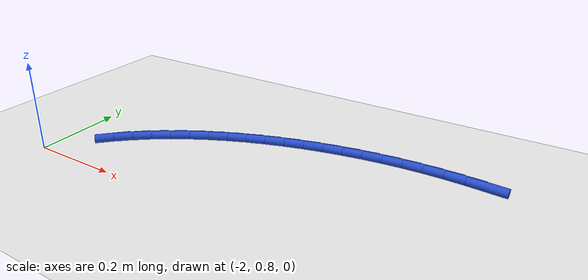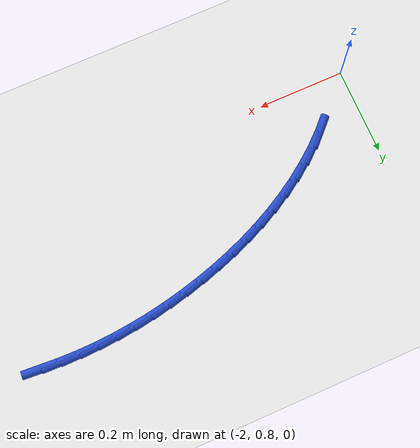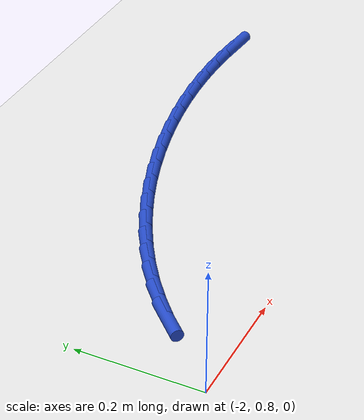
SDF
<sdf version="1.6">
 <world name="default">
  <model name="ground_plane">
   <static>1</static>
   <link name="link">
    <collision name="collision">
     <geometry><plane><normal>0 0 1</normal><size>100 100</size></plane></geometry>
     <surface><friction><ode><mu>100</mu><mu2>50</mu2></ode></friction></surface>
    </collision>
    <visual name="visual">
     <cast_shadows>0</cast_shadows>
     <geometry><plane><normal>0 0 1</normal><size>100 100</size></plane></geometry>
     <material>
      <script><uri>file://media/materials/scripts/gazebo.material</uri><name>Gazebo/WhiteGlow</name></script>
     </material>
    </visual>
   </link>
  </model>
  <model name="line">
   <link name="link_40">
    <pose>-1.1232982848768864 1.1483035835782072 0.01 0 1.57 -0.07021624613493332</pose>
    <collision name="collision">
     <geometry><cylinder><radius>0.01</radius><length>0.08</length></cylinder></geometry>
    </collision>
    <visual name="visual">
     <material>
      <script><name>Gazebo/Blue</name><uri>file://media/materials/scripts/gazebo.material</uri></script>
     </material>
     <geometry><cylinder><radius>0.01</radius><length>0.08</length></cylinder></geometry>
    </visual>
   </link>
   <link name="link_41">
    <pose>-1.1661160556076502 1.151315037479302 0.01 0 1.57 -0.027476452278554456</pose>
    <collision name="collision">
     <geometry><cylinder><radius>0.01</radius><length>0.08</length></cylinder></geometry>
    </collision>
    <visual name="visual">
     <material>
      <script><name>Gazebo/Blue</name><uri>file://media/materials/scripts/gazebo.material</uri></script>
     </material>
     <geometry><cylinder><radius>0.01</radius><length>0.08</length></cylinder></geometry>
    </visual>
   </link>
   <link name="link_42">
    <pose>-1.2090069673914028 1.1524938242288623 0.01 0 1.57 0.014487820118626262</pose>
    <collision name="collision">
     <geometry><cylinder><radius>0.01</radius><length>0.08</length></cylinder></geometry>
    </collision>
    <visual name="visual">
     <material>
      <script><name>Gazebo/Blue</name><uri>file://media/materials/scripts/gazebo.material</uri></script>
     </material>
     <geometry><cylinder><radius>0.01</radius><length>0.08</length></cylinder></geometry>
    </visual>
   </link>
   <link name="link_43">
    <pose>-1.2519570507747277 1.1518715276067315 0.01 0 1.57 0.05557198948166423</pose>
    <collision name="collision">
     <geometry><cylinder><radius>0.01</radius><length>0.08</length></cylinder></geometry>
    </collision>
    <visual name="visual">
     <material>
      <script><name>Gazebo/Blue</name><uri>file://media/materials/scripts/gazebo.material</uri></script>
     </material>
     <geometry><cylinder><radius>0.01</radius><length>0.08</length></cylinder></geometry>
    </visual>
   </link>
   <link name="link_44">
    <pose>-1.2949523363042093 1.1494797313927527 0.01 0 1.57 0.0956875080335254</pose>
    <collision name="collision">
     <geometry><cylinder><radius>0.01</radius><length>0.08</length></cylinder></geometry>
    </collision>
    <visual name="visual">
     <material>
      <script><name>Gazebo/Blue</name><uri>file://media/materials/scripts/gazebo.material</uri></script>
     </material>
     <geometry><cylinder><radius>0.01</radius><length>0.08</length></cylinder></geometry>
    </visual>
   </link>
   <link name="link_45">
    <pose>-1.3379788545264293 1.1453500193667683 0.01 0 1.57 0.13476213916483035</pose>
    <collision name="collision">
     <geometry><cylinder><radius>0.01</radius><length>0.08</length></cylinder></geometry>
    </collision>
    <visual name="visual">
     <material>
      <script><name>Gazebo/Blue</name><uri>file://media/materials/scripts/gazebo.material</uri></script>
     </material>
     <geometry><cylinder><radius>0.01</radius><length>0.08</length></cylinder></geometry>
    </visual>
   </link>
   <link name="link_46">
    <pose>-1.381022635987973 1.1395139753086223 0.01 0 1.57 0.17273969000459943</pose>
    <collision name="collision">
     <geometry><cylinder><radius>0.01</radius><length>0.08</length></cylinder></geometry>
    </collision>
    <visual name="visual">
     <material>
      <script><name>Gazebo/Blue</name><uri>file://media/materials/scripts/gazebo.material</uri></script>
     </material>
     <geometry><cylinder><radius>0.01</radius><length>0.08</length></cylinder></geometry>
    </visual>
   </link>
   <link name="link_47">
    <pose>-1.4240697112354217 1.132003182998157 0.01 0 1.57 0.2096071957228121</pose>
    <collision name="collision">
     <geometry><cylinder><radius>0.01</radius><length>0.08</length></cylinder></geometry>
    </collision>
    <visual name="visual">
     <material>
      <script><name>Gazebo/Blue</name><uri>file://media/materials/scripts/gazebo.material</uri></script>
     </material>
     <geometry><cylinder><radius>0.01</radius><length>0.08</length></cylinder></geometry>
    </visual>
   </link>
   <link name="link_48">
    <pose>-1.4671038384614792 1.1228484543832284 0.01 0 1.57 0.24628461708831745</pose>
    <collision name="collision">
     <geometry><cylinder><radius>0.01</radius><length>0.08</length></cylinder></geometry>
    </collision>
    <visual name="visual">
     <material>
      <script><name>Gazebo/Blue</name><uri>file://media/materials/scripts/gazebo.material</uri></script>
     </material>
     <geometry><cylinder><radius>0.01</radius><length>0.08</length></cylinder></geometry>
    </visual>
   </link>
   <link name="link_49">
    <pose>-1.5100358995711347 1.1120558481149296 0.01 0 1.57 0.2840749618697426</pose>
    <collision name="collision">
     <geometry><cylinder><radius>0.01</radius><length>0.08</length></cylinder></geometry>
    </collision>
    <visual name="visual">
     <material>
      <script><name>Gazebo/Blue</name><uri>file://media/materials/scripts/gazebo.material</uri></script>
     </material>
     <geometry><cylinder><radius>0.01</radius><length>0.08</length></cylinder></geometry>
    </visual>
   </link>
   <link name="link_50">
    <pose>-1.552690191509292 1.0996020132341846 0.01 0 1.57 0.3233465358810321</pose>
    <collision name="collision">
     <geometry><cylinder><radius>0.01</radius><length>0.08</length></cylinder></geometry>
    </collision>
    <visual name="visual">
     <material>
      <script><name>Gazebo/Blue</name><uri>file://media/materials/scripts/gazebo.material</uri></script>
     </material>
     <geometry><cylinder><radius>0.01</radius><length>0.08</length></cylinder></geometry>
    </visual>
   </link>
   <link name="link_51">
    <pose>-1.5948859715732062 1.0854618870057307 0.01 0 1.57 0.36440805415830435</pose>
    <collision name="collision">
     <geometry><cylinder><radius>0.01</radius><length>0.08</length></cylinder></geometry>
    </collision>
    <visual name="visual">
     <material>
      <script><name>Gazebo/Blue</name><uri>file://media/materials/scripts/gazebo.material</uri></script>
     </material>
     <geometry><cylinder><radius>0.01</radius><length>0.08</length></cylinder></geometry>
    </visual>
   </link>
   <link name="link_52">
    <pose>-1.636442497060127 1.0696104066943042 0.01 0 1.57 0.40757199093539087</pose>
    <collision name="collision">
     <geometry><cylinder><radius>0.01</radius><length>0.08</length></cylinder></geometry>
    </collision>
    <visual name="visual">
     <material>
      <script><name>Gazebo/Blue</name><uri>file://media/materials/scripts/gazebo.material</uri></script>
     </material>
     <geometry><cylinder><radius>0.01</radius><length>0.08</length></cylinder></geometry>
    </visual>
   </link>
   <link name="link_53">
    <pose>-1.6771790252673098 1.0520225095646425 0.01 0 1.57 0.45315391550806555</pose>
    <collision name="collision">
     <geometry><cylinder><radius>0.01</radius><length>0.08</length></cylinder></geometry>
    </collision>
    <visual name="visual">
     <material>
      <script><name>Gazebo/Blue</name><uri>file://media/materials/scripts/gazebo.material</uri></script>
     </material>
     <geometry><cylinder><radius>0.01</radius><length>0.08</length></cylinder></geometry>
    </visual>
   </link>
   <link name="link_54">
    <pose>-1.7169148134920063 1.0326731328814829 0.01 0 1.57 0.5014691511098146</pose>
    <collision name="collision">
     <geometry><cylinder><radius>0.01</radius><length>0.08</length></cylinder></geometry>
    </collision>
    <visual name="visual">
     <material>
      <script><name>Gazebo/Blue</name><uri>file://media/materials/scripts/gazebo.material</uri></script>
     </material>
     <geometry><cylinder><radius>0.01</radius><length>0.08</length></cylinder></geometry>
    </visual>
   </link>
   <link name="link_55">
    <pose>-1.75546911903147 1.0115372139095624 0.01 0 1.57 0.5528260169134608</pose>
    <collision name="collision">
     <geometry><cylinder><radius>0.01</radius><length>0.08</length></cylinder></geometry>
    </collision>
    <visual name="visual">
     <material>
      <script><name>Gazebo/Blue</name><uri>file://media/materials/scripts/gazebo.material</uri></script>
     </material>
     <geometry><cylinder><radius>0.01</radius><length>0.08</length></cylinder></geometry>
    </visual>
   </link>
   <link name="link_56">
    <pose>-1.7926611991829537 0.9885896899136176 0.01 0 1.57 0.6075147874828148</pose>
    <collision name="collision">
     <geometry><cylinder><radius>0.01</radius><length>0.08</length></cylinder></geometry>
    </collision>
    <visual name="visual">
     <material>
      <script><name>Gazebo/Blue</name><uri>file://media/materials/scripts/gazebo.material</uri></script>
     </material>
     <geometry><cylinder><radius>0.01</radius><length>0.08</length></cylinder></geometry>
    </visual>
   </link>
   <link name="link_57">
    <pose>-1.82831031124371 0.9638054981583861 0.01 0 1.57 0.6657915138858808</pose>
    <collision name="collision">
     <geometry><cylinder><radius>0.01</radius><length>0.08</length></cylinder></geometry>
    </collision>
    <visual name="visual">
     <material>
      <script><name>Gazebo/Blue</name><uri>file://media/materials/scripts/gazebo.material</uri></script>
     </material>
     <geometry><cylinder><radius>0.01</radius><length>0.08</length></cylinder></geometry>
    </visual>
   </link>
   <link name="link_58">
    <pose>-1.862235712510992 0.9371595759086044 0.01 0 1.57 0.7278561203931961</pose>
    <collision name="collision">
     <geometry><cylinder><radius>0.01</radius><length>0.08</length></cylinder></geometry>
    </collision>
    <visual name="visual">
     <material>
      <script><name>Gazebo/Blue</name><uri>file://media/materials/scripts/gazebo.material</uri></script>
     </material>
     <geometry><cylinder><radius>0.01</radius><length>0.08</length></cylinder></geometry>
    </visual>
   </link>
   <link name="link_59">
    <pose>-1.894256660282053 0.9086268604290104 0.01 0 1.57 0.7938248793110207</pose>
    <collision name="collision">
     <geometry><cylinder><radius>0.01</radius><length>0.08</length></cylinder></geometry>
    </collision>
    <visual name="visual">
     <material>
      <script><name>Gazebo/Blue</name><uri>file://media/materials/scripts/gazebo.material</uri></script>
     </material>
     <geometry><cylinder><radius>0.01</radius><length>0.08</length></cylinder></geometry>
    </visual>
   </link>
  </model>
 </world>
</sdf>
